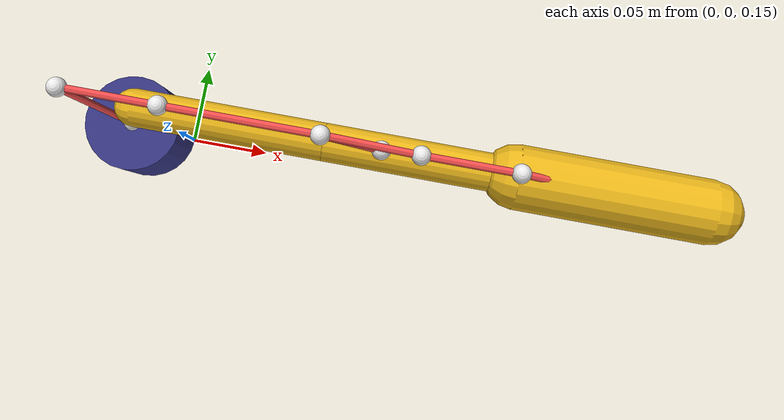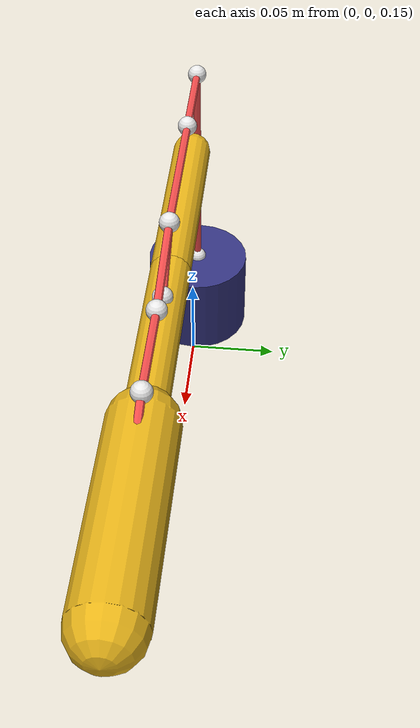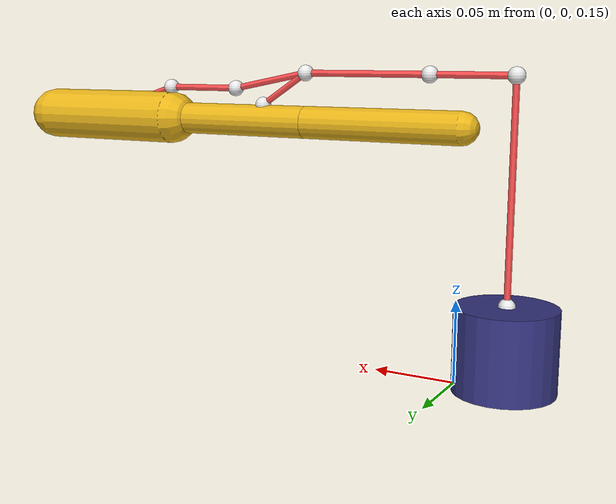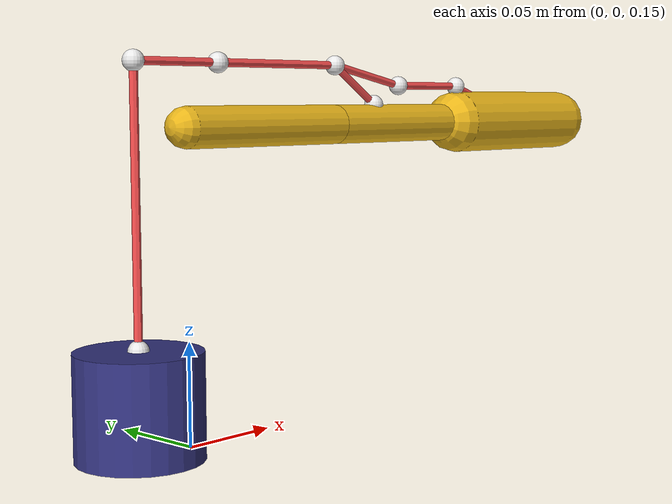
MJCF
<mujoco>
  <option integrator="RK4">
    <flag contact="disable" energy="enable"/>
  </option>

  <default>
    <joint axis="0 1 0" range="0 60" limited="true"/>
    <geom type="capsule" size=".01" rgba=".9 .7 .1 1"/>
    <site rgba=".9 .9 .9 1"/>
    <default class="visual_cylinder">
      <geom type="cylinder" fromto="0 .015 0  0 -.015 0" size=".02" rgba=".3 .9 .3 .4"/>
    </default>
  </default>

  <worldbody>
    <light pos="0 0 1"/>
    <body name="weight" pos="-.03 0 .175">
      <joint axis="0 0 1" pos="0 0 .025" type="slide"/>
      <geom type="cylinder" size=".03 .025" density="5000" rgba=".2 .2 .5 1"/>
      <site name="s1" pos="0 0 .025"/>
    </body>

    <site name="s2" pos="-.03 0 .33"/>

    <body pos="0 0 .3">
      <joint/>
      <geom fromto="0 0 0  .1 0 0"/>
      <site name="s3" pos=".02 0 .03"/>

      <body pos=".1 0 0">
        <joint/>
        <geom fromto="0 0 0  .1 0 0"/>
        <site name="s4" pos=".03 0 .01"/>
        <site name="s5" pos=".05 0 .02"/>
        <site name="side2" pos="0 0 .03"/>

        <body pos=".1 0 0">
          <joint/>
          <geom fromto="0 0 0  .1 0 0" size=".017"/>
          <site name="s6" pos=".03 0 .01"/>
          <site name="side3" pos="0 0 .02"/>
        </body>
      </body>
    </body>
  </worldbody>

  <tendon>
    <spatial range="0 .33" limited="true" width=".002" rgba=".95 .3 .3 1">
      <site site="s1"/>
      <site site="s2"/>
      <site site="s3"/>

      <pulley divisor="2"/>
      <site site="s3"/>
      <site site="side2"/>
      <site site="s4"/>

      <pulley divisor="2"/>
      <site site="s3"/>
      <site site="side2"/>
      <site site="s5"/>
      <site site="side3"/>
      <site site="s6"/>
    </spatial>
  </tendon>
</mujoco>
